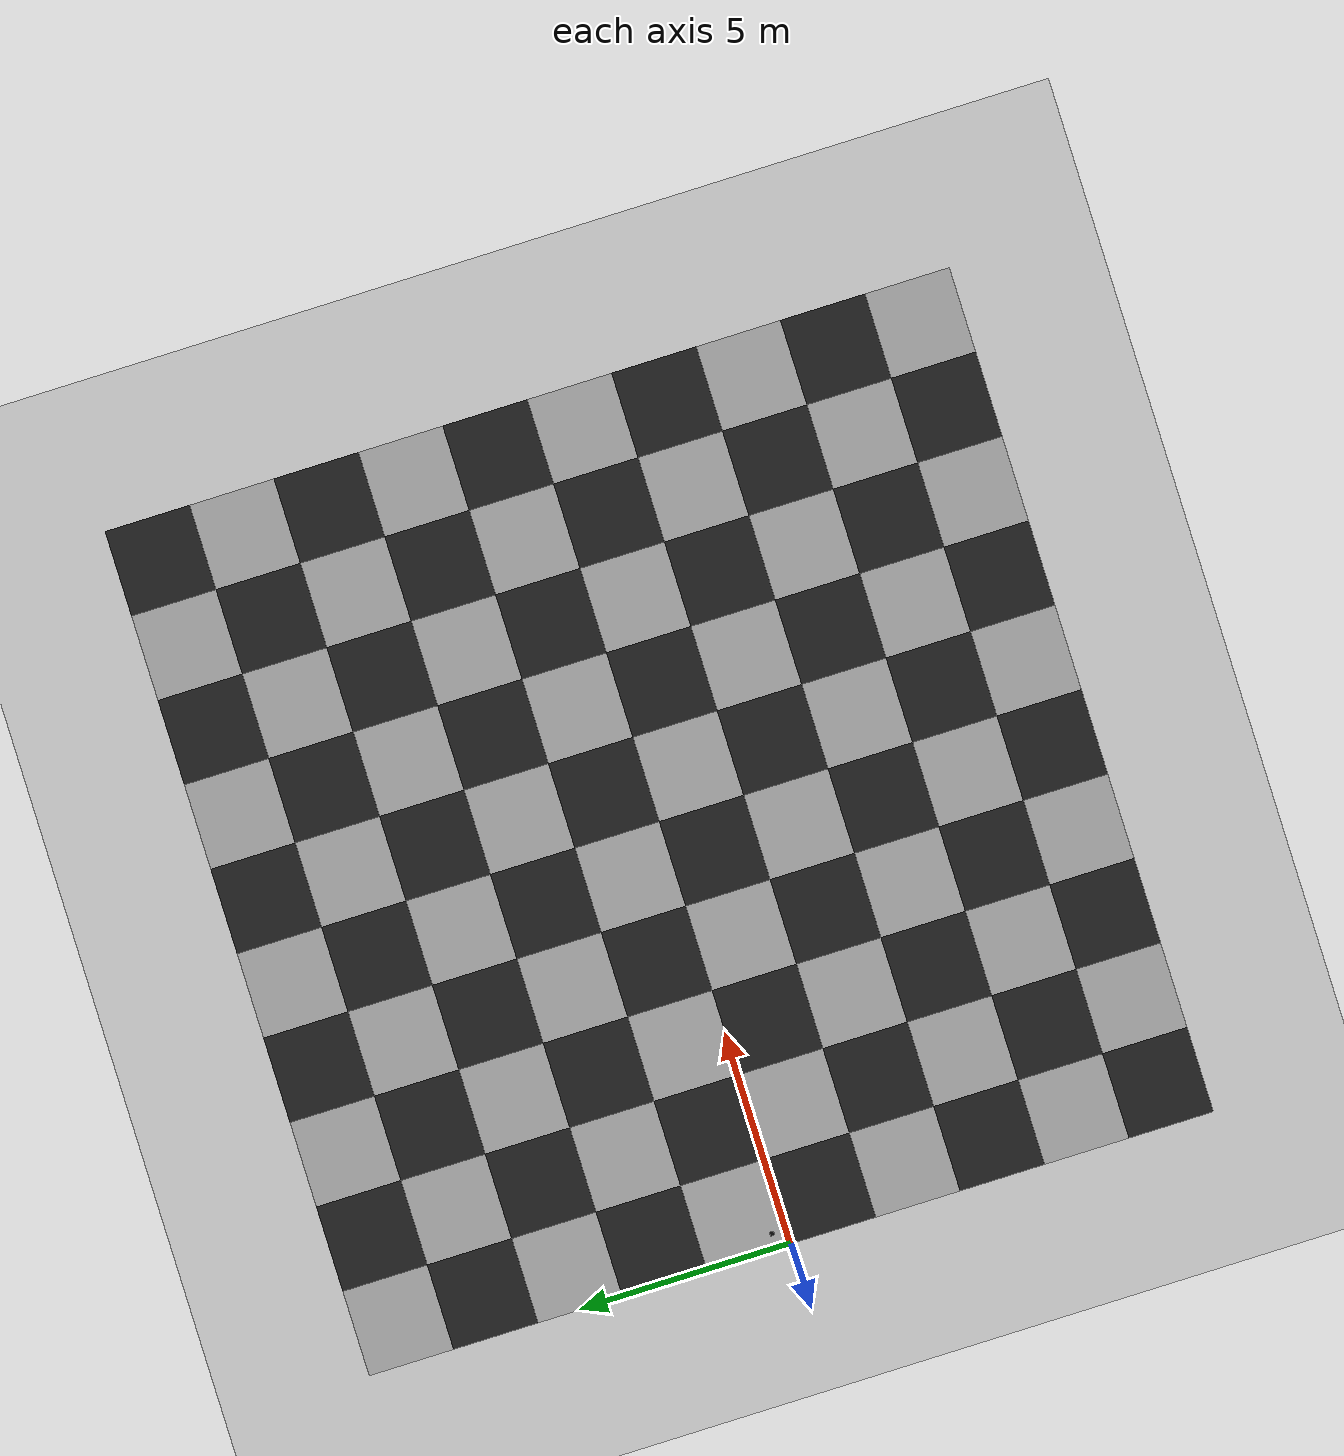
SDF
<sdf version="1.9">
 <world name="v7_railway_tunnel">
  <model name="ground_plane">
   <static>true</static>
   <link name="link">
    <collision name="collision">
     <geometry><plane><normal>0 0 1</normal><size>1 1</size></plane></geometry>
    </collision>
    <visual name="visual">
     <geometry><plane><normal>0 0 1</normal><size>500 500</size></plane></geometry>
     <material>
      <ambient>0.8 0.8 0.8 1</ambient>
      <diffuse>0.8 0.8 0.8 1</diffuse>
      <specular>0.1 0.1 0.1 1</specular>
     </material>
    </visual>
   </link>
  </model>
  <model name="optical_flow_floor">
   <static>true</static>
   <link name="tile_10_0">
    <pose>1 -9 0.006 0 0 0</pose>
    <visual name="visual">
     <geometry><box><size>2 2 0.01</size></box></geometry>
     <material>
      <ambient>0.12 0.12 0.12 1</ambient>
      <diffuse>0.12 0.12 0.12 1</diffuse>
      <specular>0.1 0.1 0.1 1</specular>
     </material>
    </visual>
   </link>
   <link name="tile_10_1">
    <pose>1 -7 0.006 0 0 0</pose>
    <visual name="visual">
     <geometry><box><size>2 2 0.01</size></box></geometry>
     <material>
      <ambient>0.65 0.65 0.65 1</ambient>
      <diffuse>0.65 0.65 0.65 1</diffuse>
      <specular>0.1 0.1 0.1 1</specular>
     </material>
    </visual>
   </link>
   <link name="tile_10_2">
    <pose>1 -5 0.006 0 0 0</pose>
    <visual name="visual">
     <geometry><box><size>2 2 0.01</size></box></geometry>
     <material>
      <ambient>0.12 0.12 0.12 1</ambient>
      <diffuse>0.12 0.12 0.12 1</diffuse>
      <specular>0.1 0.1 0.1 1</specular>
     </material>
    </visual>
   </link>
   <link name="tile_10_3">
    <pose>1 -3 0.006 0 0 0</pose>
    <visual name="visual">
     <geometry><box><size>2 2 0.01</size></box></geometry>
     <material>
      <ambient>0.65 0.65 0.65 1</ambient>
      <diffuse>0.65 0.65 0.65 1</diffuse>
      <specular>0.1 0.1 0.1 1</specular>
     </material>
    </visual>
   </link>
   <link name="tile_10_4">
    <pose>1 -1 0.006 0 0 0</pose>
    <visual name="visual">
     <geometry><box><size>2 2 0.01</size></box></geometry>
     <material>
      <ambient>0.12 0.12 0.12 1</ambient>
      <diffuse>0.12 0.12 0.12 1</diffuse>
      <specular>0.1 0.1 0.1 1</specular>
     </material>
    </visual>
   </link>
   <link name="tile_10_5">
    <pose>1 1 0.006 0 0 0</pose>
    <visual name="visual">
     <geometry><box><size>2 2 0.01</size></box></geometry>
     <material>
      <ambient>0.65 0.65 0.65 1</ambient>
      <diffuse>0.65 0.65 0.65 1</diffuse>
      <specular>0.1 0.1 0.1 1</specular>
     </material>
    </visual>
   </link>
   <link name="tile_10_6">
    <pose>1 3 0.006 0 0 0</pose>
    <visual name="visual">
     <geometry><box><size>2 2 0.01</size></box></geometry>
     <material>
      <ambient>0.12 0.12 0.12 1</ambient>
      <diffuse>0.12 0.12 0.12 1</diffuse>
      <specular>0.1 0.1 0.1 1</specular>
     </material>
    </visual>
   </link>
   <link name="tile_10_7">
    <pose>1 5 0.006 0 0 0</pose>
    <visual name="visual">
     <geometry><box><size>2 2 0.01</size></box></geometry>
     <material>
      <ambient>0.65 0.65 0.65 1</ambient>
      <diffuse>0.65 0.65 0.65 1</diffuse>
      <specular>0.1 0.1 0.1 1</specular>
     </material>
    </visual>
   </link>
   <link name="tile_10_8">
    <pose>1 7 0.006 0 0 0</pose>
    <visual name="visual">
     <geometry><box><size>2 2 0.01</size></box></geometry>
     <material>
      <ambient>0.12 0.12 0.12 1</ambient>
      <diffuse>0.12 0.12 0.12 1</diffuse>
      <specular>0.1 0.1 0.1 1</specular>
     </material>
    </visual>
   </link>
   <link name="tile_10_9">
    <pose>1 9 0.006 0 0 0</pose>
    <visual name="visual">
     <geometry><box><size>2 2 0.01</size></box></geometry>
     <material>
      <ambient>0.65 0.65 0.65 1</ambient>
      <diffuse>0.65 0.65 0.65 1</diffuse>
      <specular>0.1 0.1 0.1 1</specular>
     </material>
    </visual>
   </link>
   <link name="tile_11_0">
    <pose>3 -9 0.006 0 0 0</pose>
    <visual name="visual">
     <geometry><box><size>2 2 0.01</size></box></geometry>
     <material>
      <ambient>0.65 0.65 0.65 1</ambient>
      <diffuse>0.65 0.65 0.65 1</diffuse>
      <specular>0.1 0.1 0.1 1</specular>
     </material>
    </visual>
   </link>
   <link name="tile_11_1">
    <pose>3 -7 0.006 0 0 0</pose>
    <visual name="visual">
     <geometry><box><size>2 2 0.01</size></box></geometry>
     <material>
      <ambient>0.12 0.12 0.12 1</ambient>
      <diffuse>0.12 0.12 0.12 1</diffuse>
      <specular>0.1 0.1 0.1 1</specular>
     </material>
    </visual>
   </link>
   <link name="tile_11_2">
    <pose>3 -5 0.006 0 0 0</pose>
    <visual name="visual">
     <geometry><box><size>2 2 0.01</size></box></geometry>
     <material>
      <ambient>0.65 0.65 0.65 1</ambient>
      <diffuse>0.65 0.65 0.65 1</diffuse>
      <specular>0.1 0.1 0.1 1</specular>
     </material>
    </visual>
   </link>
   <link name="tile_11_3">
    <pose>3 -3 0.006 0 0 0</pose>
    <visual name="visual">
     <geometry><box><size>2 2 0.01</size></box></geometry>
     <material>
      <ambient>0.12 0.12 0.12 1</ambient>
      <diffuse>0.12 0.12 0.12 1</diffuse>
      <specular>0.1 0.1 0.1 1</specular>
     </material>
    </visual>
   </link>
   <link name="tile_11_4">
    <pose>3 -1 0.006 0 0 0</pose>
    <visual name="visual">
     <geometry><box><size>2 2 0.01</size></box></geometry>
     <material>
      <ambient>0.65 0.65 0.65 1</ambient>
      <diffuse>0.65 0.65 0.65 1</diffuse>
      <specular>0.1 0.1 0.1 1</specular>
     </material>
    </visual>
   </link>
   <link name="tile_11_5">
    <pose>3 1 0.006 0 0 0</pose>
    <visual name="visual">
     <geometry><box><size>2 2 0.01</size></box></geometry>
     <material>
      <ambient>0.12 0.12 0.12 1</ambient>
      <diffuse>0.12 0.12 0.12 1</diffuse>
      <specular>0.1 0.1 0.1 1</specular>
     </material>
    </visual>
   </link>
   <link name="tile_11_6">
    <pose>3 3 0.006 0 0 0</pose>
    <visual name="visual">
     <geometry><box><size>2 2 0.01</size></box></geometry>
     <material>
      <ambient>0.65 0.65 0.65 1</ambient>
      <diffuse>0.65 0.65 0.65 1</diffuse>
      <specular>0.1 0.1 0.1 1</specular>
     </material>
    </visual>
   </link>
   <link name="tile_11_7">
    <pose>3 5 0.006 0 0 0</pose>
    <visual name="visual">
     <geometry><box><size>2 2 0.01</size></box></geometry>
     <material>
      <ambient>0.12 0.12 0.12 1</ambient>
      <diffuse>0.12 0.12 0.12 1</diffuse>
      <specular>0.1 0.1 0.1 1</specular>
     </material>
    </visual>
   </link>
   <link name="tile_11_8">
    <pose>3 7 0.006 0 0 0</pose>
    <visual name="visual">
     <geometry><box><size>2 2 0.01</size></box></geometry>
     <material>
      <ambient>0.65 0.65 0.65 1</ambient>
      <diffuse>0.65 0.65 0.65 1</diffuse>
      <specular>0.1 0.1 0.1 1</specular>
     </material>
    </visual>
   </link>
   <link name="tile_11_9">
    <pose>3 9 0.006 0 0 0</pose>
    <visual name="visual">
     <geometry><box><size>2 2 0.01</size></box></geometry>
     <material>
      <ambient>0.12 0.12 0.12 1</ambient>
      <diffuse>0.12 0.12 0.12 1</diffuse>
      <specular>0.1 0.1 0.1 1</specular>
     </material>
    </visual>
   </link>
   <link name="tile_12_0">
    <pose>5 -9 0.006 0 0 0</pose>
    <visual name="visual">
     <geometry><box><size>2 2 0.01</size></box></geometry>
     <material>
      <ambient>0.12 0.12 0.12 1</ambient>
      <diffuse>0.12 0.12 0.12 1</diffuse>
      <specular>0.1 0.1 0.1 1</specular>
     </material>
    </visual>
   </link>
   <link name="tile_12_1">
    <pose>5 -7 0.006 0 0 0</pose>
    <visual name="visual">
     <geometry><box><size>2 2 0.01</size></box></geometry>
     <material>
      <ambient>0.65 0.65 0.65 1</ambient>
      <diffuse>0.65 0.65 0.65 1</diffuse>
      <specular>0.1 0.1 0.1 1</specular>
     </material>
    </visual>
   </link>
   <link name="tile_12_2">
    <pose>5 -5 0.006 0 0 0</pose>
    <visual name="visual">
     <geometry><box><size>2 2 0.01</size></box></geometry>
     <material>
      <ambient>0.12 0.12 0.12 1</ambient>
      <diffuse>0.12 0.12 0.12 1</diffuse>
      <specular>0.1 0.1 0.1 1</specular>
     </material>
    </visual>
   </link>
   <link name="tile_12_3">
    <pose>5 -3 0.006 0 0 0</pose>
    <visual name="visual">
     <geometry><box><size>2 2 0.01</size></box></geometry>
     <material>
      <ambient>0.65 0.65 0.65 1</ambient>
      <diffuse>0.65 0.65 0.65 1</diffuse>
      <specular>0.1 0.1 0.1 1</specular>
     </material>
    </visual>
   </link>
   <link name="tile_12_4">
    <pose>5 -1 0.006 0 0 0</pose>
    <visual name="visual">
     <geometry><box><size>2 2 0.01</size></box></geometry>
     <material>
      <ambient>0.12 0.12 0.12 1</ambient>
      <diffuse>0.12 0.12 0.12 1</diffuse>
      <specular>0.1 0.1 0.1 1</specular>
     </material>
    </visual>
   </link>
   <link name="tile_12_5">
    <pose>5 1 0.006 0 0 0</pose>
    <visual name="visual">
     <geometry><box><size>2 2 0.01</size></box></geometry>
     <material>
      <ambient>0.65 0.65 0.65 1</ambient>
      <diffuse>0.65 0.65 0.65 1</diffuse>
      <specular>0.1 0.1 0.1 1</specular>
     </material>
    </visual>
   </link>
   <link name="tile_12_6">
    <pose>5 3 0.006 0 0 0</pose>
    <visual name="visual">
     <geometry><box><size>2 2 0.01</size></box></geometry>
     <material>
      <ambient>0.12 0.12 0.12 1</ambient>
      <diffuse>0.12 0.12 0.12 1</diffuse>
      <specular>0.1 0.1 0.1 1</specular>
     </material>
    </visual>
   </link>
   <link name="tile_12_7">
    <pose>5 5 0.006 0 0 0</pose>
    <visual name="visual">
     <geometry><box><size>2 2 0.01</size></box></geometry>
     <material>
      <ambient>0.65 0.65 0.65 1</ambient>
      <diffuse>0.65 0.65 0.65 1</diffuse>
      <specular>0.1 0.1 0.1 1</specular>
     </material>
    </visual>
   </link>
   <link name="tile_12_8">
    <pose>5 7 0.006 0 0 0</pose>
    <visual name="visual">
     <geometry><box><size>2 2 0.01</size></box></geometry>
     <material>
      <ambient>0.12 0.12 0.12 1</ambient>
      <diffuse>0.12 0.12 0.12 1</diffuse>
      <specular>0.1 0.1 0.1 1</specular>
     </material>
    </visual>
   </link>
   <link name="tile_12_9">
    <pose>5 9 0.006 0 0 0</pose>
    <visual name="visual">
     <geometry><box><size>2 2 0.01</size></box></geometry>
     <material>
      <ambient>0.65 0.65 0.65 1</ambient>
      <diffuse>0.65 0.65 0.65 1</diffuse>
      <specular>0.1 0.1 0.1 1</specular>
     </material>
    </visual>
   </link>
   <link name="tile_13_0">
    <pose>7 -9 0.006 0 0 0</pose>
    <visual name="visual">
     <geometry><box><size>2 2 0.01</size></box></geometry>
     <material>
      <ambient>0.65 0.65 0.65 1</ambient>
      <diffuse>0.65 0.65 0.65 1</diffuse>
      <specular>0.1 0.1 0.1 1</specular>
     </material>
    </visual>
   </link>
   <link name="tile_13_1">
    <pose>7 -7 0.006 0 0 0</pose>
    <visual name="visual">
     <geometry><box><size>2 2 0.01</size></box></geometry>
     <material>
      <ambient>0.12 0.12 0.12 1</ambient>
      <diffuse>0.12 0.12 0.12 1</diffuse>
      <specular>0.1 0.1 0.1 1</specular>
     </material>
    </visual>
   </link>
   <link name="tile_13_2">
    <pose>7 -5 0.006 0 0 0</pose>
    <visual name="visual">
     <geometry><box><size>2 2 0.01</size></box></geometry>
     <material>
      <ambient>0.65 0.65 0.65 1</ambient>
      <diffuse>0.65 0.65 0.65 1</diffuse>
      <specular>0.1 0.1 0.1 1</specular>
     </material>
    </visual>
   </link>
   <link name="tile_13_3">
    <pose>7 -3 0.006 0 0 0</pose>
    <visual name="visual">
     <geometry><box><size>2 2 0.01</size></box></geometry>
     <material>
      <ambient>0.12 0.12 0.12 1</ambient>
      <diffuse>0.12 0.12 0.12 1</diffuse>
      <specular>0.1 0.1 0.1 1</specular>
     </material>
    </visual>
   </link>
   <link name="tile_13_4">
    <pose>7 -1 0.006 0 0 0</pose>
    <visual name="visual">
     <geometry><box><size>2 2 0.01</size></box></geometry>
     <material>
      <ambient>0.65 0.65 0.65 1</ambient>
      <diffuse>0.65 0.65 0.65 1</diffuse>
      <specular>0.1 0.1 0.1 1</specular>
     </material>
    </visual>
   </link>
   <link name="tile_13_5">
    <pose>7 1 0.006 0 0 0</pose>
    <visual name="visual">
     <geometry><box><size>2 2 0.01</size></box></geometry>
     <material>
      <ambient>0.12 0.12 0.12 1</ambient>
      <diffuse>0.12 0.12 0.12 1</diffuse>
      <specular>0.1 0.1 0.1 1</specular>
     </material>
    </visual>
   </link>
   <link name="tile_13_6">
    <pose>7 3 0.006 0 0 0</pose>
    <visual name="visual">
     <geometry><box><size>2 2 0.01</size></box></geometry>
     <material>
      <ambient>0.65 0.65 0.65 1</ambient>
      <diffuse>0.65 0.65 0.65 1</diffuse>
      <specular>0.1 0.1 0.1 1</specular>
     </material>
    </visual>
   </link>
   <link name="tile_13_7">
    <pose>7 5 0.006 0 0 0</pose>
    <visual name="visual">
     <geometry><box><size>2 2 0.01</size></box></geometry>
     <material>
      <ambient>0.12 0.12 0.12 1</ambient>
      <diffuse>0.12 0.12 0.12 1</diffuse>
      <specular>0.1 0.1 0.1 1</specular>
     </material>
    </visual>
   </link>
   <link name="tile_13_8">
    <pose>7 7 0.006 0 0 0</pose>
    <visual name="visual">
     <geometry><box><size>2 2 0.01</size></box></geometry>
     <material>
      <ambient>0.65 0.65 0.65 1</ambient>
      <diffuse>0.65 0.65 0.65 1</diffuse>
      <specular>0.1 0.1 0.1 1</specular>
     </material>
    </visual>
   </link>
   <link name="tile_13_9">
    <pose>7 9 0.006 0 0 0</pose>
    <visual name="visual">
     <geometry><box><size>2 2 0.01</size></box></geometry>
     <material>
      <ambient>0.12 0.12 0.12 1</ambient>
      <diffuse>0.12 0.12 0.12 1</diffuse>
      <specular>0.1 0.1 0.1 1</specular>
     </material>
    </visual>
   </link>
   <link name="tile_14_0">
    <pose>9 -9 0.006 0 0 0</pose>
    <visual name="visual">
     <geometry><box><size>2 2 0.01</size></box></geometry>
     <material>
      <ambient>0.12 0.12 0.12 1</ambient>
      <diffuse>0.12 0.12 0.12 1</diffuse>
      <specular>0.1 0.1 0.1 1</specular>
     </material>
    </visual>
   </link>
   <link name="tile_14_1">
    <pose>9 -7 0.006 0 0 0</pose>
    <visual name="visual">
     <geometry><box><size>2 2 0.01</size></box></geometry>
     <material>
      <ambient>0.65 0.65 0.65 1</ambient>
      <diffuse>0.65 0.65 0.65 1</diffuse>
      <specular>0.1 0.1 0.1 1</specular>
     </material>
    </visual>
   </link>
   <link name="tile_14_2">
    <pose>9 -5 0.006 0 0 0</pose>
    <visual name="visual">
     <geometry><box><size>2 2 0.01</size></box></geometry>
     <material>
      <ambient>0.12 0.12 0.12 1</ambient>
      <diffuse>0.12 0.12 0.12 1</diffuse>
      <specular>0.1 0.1 0.1 1</specular>
     </material>
    </visual>
   </link>
   <link name="tile_14_3">
    <pose>9 -3 0.006 0 0 0</pose>
    <visual name="visual">
     <geometry><box><size>2 2 0.01</size></box></geometry>
     <material>
      <ambient>0.65 0.65 0.65 1</ambient>
      <diffuse>0.65 0.65 0.65 1</diffuse>
      <specular>0.1 0.1 0.1 1</specular>
     </material>
    </visual>
   </link>
   <link name="tile_14_4">
    <pose>9 -1 0.006 0 0 0</pose>
    <visual name="visual">
     <geometry><box><size>2 2 0.01</size></box></geometry>
     <material>
      <ambient>0.12 0.12 0.12 1</ambient>
      <diffuse>0.12 0.12 0.12 1</diffuse>
      <specular>0.1 0.1 0.1 1</specular>
     </material>
    </visual>
   </link>
   <link name="tile_14_5">
    <pose>9 1 0.006 0 0 0</pose>
    <visual name="visual">
     <geometry><box><size>2 2 0.01</size></box></geometry>
     <material>
      <ambient>0.65 0.65 0.65 1</ambient>
      <diffuse>0.65 0.65 0.65 1</diffuse>
      <specular>0.1 0.1 0.1 1</specular>
     </material>
    </visual>
   </link>
   <link name="tile_14_6">
    <pose>9 3 0.006 0 0 0</pose>
    <visual name="visual">
     <geometry><box><size>2 2 0.01</size></box></geometry>
     <material>
      <ambient>0.12 0.12 0.12 1</ambient>
      <diffuse>0.12 0.12 0.12 1</diffuse>
      <specular>0.1 0.1 0.1 1</specular>
     </material>
    </visual>
   </link>
   <link name="tile_14_7">
    <pose>9 5 0.006 0 0 0</pose>
    <visual name="visual">
     <geometry><box><size>2 2 0.01</size></box></geometry>
     <material>
      <ambient>0.65 0.65 0.65 1</ambient>
      <diffuse>0.65 0.65 0.65 1</diffuse>
      <specular>0.1 0.1 0.1 1</specular>
     </material>
    </visual>
   </link>
   <link name="tile_14_8">
    <pose>9 7 0.006 0 0 0</pose>
    <visual name="visual">
     <geometry><box><size>2 2 0.01</size></box></geometry>
     <material>
      <ambient>0.12 0.12 0.12 1</ambient>
      <diffuse>0.12 0.12 0.12 1</diffuse>
      <specular>0.1 0.1 0.1 1</specular>
     </material>
    </visual>
   </link>
   <link name="tile_14_9">
    <pose>9 9 0.006 0 0 0</pose>
    <visual name="visual">
     <geometry><box><size>2 2 0.01</size></box></geometry>
     <material>
      <ambient>0.65 0.65 0.65 1</ambient>
      <diffuse>0.65 0.65 0.65 1</diffuse>
      <specular>0.1 0.1 0.1 1</specular>
     </material>
    </visual>
   </link>
   <link name="tile_15_0">
    <pose>11 -9 0.006 0 0 0</pose>
    <visual name="visual">
     <geometry><box><size>2 2 0.01</size></box></geometry>
     <material>
      <ambient>0.65 0.65 0.65 1</ambient>
      <diffuse>0.65 0.65 0.65 1</diffuse>
      <specular>0.1 0.1 0.1 1</specular>
     </material>
    </visual>
   </link>
   <link name="tile_15_1">
    <pose>11 -7 0.006 0 0 0</pose>
    <visual name="visual">
     <geometry><box><size>2 2 0.01</size></box></geometry>
     <material>
      <ambient>0.12 0.12 0.12 1</ambient>
      <diffuse>0.12 0.12 0.12 1</diffuse>
      <specular>0.1 0.1 0.1 1</specular>
     </material>
    </visual>
   </link>
   <link name="tile_15_2">
    <pose>11 -5 0.006 0 0 0</pose>
    <visual name="visual">
     <geometry><box><size>2 2 0.01</size></box></geometry>
     <material>
      <ambient>0.65 0.65 0.65 1</ambient>
      <diffuse>0.65 0.65 0.65 1</diffuse>
      <specular>0.1 0.1 0.1 1</specular>
     </material>
    </visual>
   </link>
   <link name="tile_15_3">
    <pose>11 -3 0.006 0 0 0</pose>
    <visual name="visual">
     <geometry><box><size>2 2 0.01</size></box></geometry>
     <material>
      <ambient>0.12 0.12 0.12 1</ambient>
      <diffuse>0.12 0.12 0.12 1</diffuse>
      <specular>0.1 0.1 0.1 1</specular>
     </material>
    </visual>
   </link>
   <link name="tile_15_4">
    <pose>11 -1 0.006 0 0 0</pose>
    <visual name="visual">
     <geometry><box><size>2 2 0.01</size></box></geometry>
     <material>
      <ambient>0.65 0.65 0.65 1</ambient>
      <diffuse>0.65 0.65 0.65 1</diffuse>
      <specular>0.1 0.1 0.1 1</specular>
     </material>
    </visual>
   </link>
   <link name="tile_15_5">
    <pose>11 1 0.006 0 0 0</pose>
    <visual name="visual">
     <geometry><box><size>2 2 0.01</size></box></geometry>
     <material>
      <ambient>0.12 0.12 0.12 1</ambient>
      <diffuse>0.12 0.12 0.12 1</diffuse>
      <specular>0.1 0.1 0.1 1</specular>
     </material>
    </visual>
   </link>
   <link name="tile_15_6">
    <pose>11 3 0.006 0 0 0</pose>
    <visual name="visual">
     <geometry><box><size>2 2 0.01</size></box></geometry>
     <material>
      <ambient>0.65 0.65 0.65 1</ambient>
      <diffuse>0.65 0.65 0.65 1</diffuse>
      <specular>0.1 0.1 0.1 1</specular>
     </material>
    </visual>
   </link>
   <link name="tile_15_7">
    <pose>11 5 0.006 0 0 0</pose>
    <visual name="visual">
     <geometry><box><size>2 2 0.01</size></box></geometry>
     <material>
      <ambient>0.12 0.12 0.12 1</ambient>
      <diffuse>0.12 0.12 0.12 1</diffuse>
      <specular>0.1 0.1 0.1 1</specular>
     </material>
    </visual>
   </link>
   <link name="tile_15_8">
    <pose>11 7 0.006 0 0 0</pose>
    <visual name="visual">
     <geometry><box><size>2 2 0.01</size></box></geometry>
     <material>
      <ambient>0.65 0.65 0.65 1</ambient>
      <diffuse>0.65 0.65 0.65 1</diffuse>
      <specular>0.1 0.1 0.1 1</specular>
     </material>
    </visual>
   </link>
   <link name="tile_15_9">
    <pose>11 9 0.006 0 0 0</pose>
    <visual name="visual">
     <geometry><box><size>2 2 0.01</size></box></geometry>
     <material>
      <ambient>0.12 0.12 0.12 1</ambient>
      <diffuse>0.12 0.12 0.12 1</diffuse>
      <specular>0.1 0.1 0.1 1</specular>
     </material>
    </visual>
   </link>
   <link name="tile_16_0">
    <pose>13 -9 0.006 0 0 0</pose>
    <visual name="visual">
     <geometry><box><size>2 2 0.01</size></box></geometry>
     <material>
      <ambient>0.12 0.12 0.12 1</ambient>
      <diffuse>0.12 0.12 0.12 1</diffuse>
      <specular>0.1 0.1 0.1 1</specular>
     </material>
    </visual>
   </link>
   <link name="tile_16_1">
    <pose>13 -7 0.006 0 0 0</pose>
    <visual name="visual">
     <geometry><box><size>2 2 0.01</size></box></geometry>
     <material>
      <ambient>0.65 0.65 0.65 1</ambient>
      <diffuse>0.65 0.65 0.65 1</diffuse>
      <specular>0.1 0.1 0.1 1</specular>
     </material>
    </visual>
   </link>
   <link name="tile_16_2">
    <pose>13 -5 0.006 0 0 0</pose>
    <visual name="visual">
     <geometry><box><size>2 2 0.01</size></box></geometry>
     <material>
      <ambient>0.12 0.12 0.12 1</ambient>
      <diffuse>0.12 0.12 0.12 1</diffuse>
      <specular>0.1 0.1 0.1 1</specular>
     </material>
    </visual>
   </link>
   <link name="tile_16_3">
    <pose>13 -3 0.006 0 0 0</pose>
    <visual name="visual">
     <geometry><box><size>2 2 0.01</size></box></geometry>
     <material>
      <ambient>0.65 0.65 0.65 1</ambient>
      <diffuse>0.65 0.65 0.65 1</diffuse>
      <specular>0.1 0.1 0.1 1</specular>
     </material>
    </visual>
   </link>
   <link name="tile_16_4">
    <pose>13 -1 0.006 0 0 0</pose>
    <visual name="visual">
     <geometry><box><size>2 2 0.01</size></box></geometry>
     <material>
      <ambient>0.12 0.12 0.12 1</ambient>
      <diffuse>0.12 0.12 0.12 1</diffuse>
      <specular>0.1 0.1 0.1 1</specular>
     </material>
    </visual>
   </link>
   <link name="tile_16_5">
    <pose>13 1 0.006 0 0 0</pose>
    <visual name="visual">
     <geometry><box><size>2 2 0.01</size></box></geometry>
     <material>
      <ambient>0.65 0.65 0.65 1</ambient>
      <diffuse>0.65 0.65 0.65 1</diffuse>
      <specular>0.1 0.1 0.1 1</specular>
     </material>
    </visual>
   </link>
   <link name="tile_16_6">
    <pose>13 3 0.006 0 0 0</pose>
    <visual name="visual">
     <geometry><box><size>2 2 0.01</size></box></geometry>
     <material>
      <ambient>0.12 0.12 0.12 1</ambient>
      <diffuse>0.12 0.12 0.12 1</diffuse>
      <specular>0.1 0.1 0.1 1</specular>
     </material>
    </visual>
   </link>
   <link name="tile_16_7">
    <pose>13 5 0.006 0 0 0</pose>
    <visual name="visual">
     <geometry><box><size>2 2 0.01</size></box></geometry>
     <material>
      <ambient>0.65 0.65 0.65 1</ambient>
      <diffuse>0.65 0.65 0.65 1</diffuse>
      <specular>0.1 0.1 0.1 1</specular>
     </material>
    </visual>
   </link>
   <link name="tile_16_8">
    <pose>13 7 0.006 0 0 0</pose>
    <visual name="visual">
     <geometry><box><size>2 2 0.01</size></box></geometry>
     <material>
      <ambient>0.12 0.12 0.12 1</ambient>
      <diffuse>0.12 0.12 0.12 1</diffuse>
      <specular>0.1 0.1 0.1 1</specular>
     </material>
    </visual>
   </link>
   <link name="tile_16_9">
    <pose>13 9 0.006 0 0 0</pose>
    <visual name="visual">
     <geometry><box><size>2 2 0.01</size></box></geometry>
     <material>
      <ambient>0.65 0.65 0.65 1</ambient>
      <diffuse>0.65 0.65 0.65 1</diffuse>
      <specular>0.1 0.1 0.1 1</specular>
     </material>
    </visual>
   </link>
   <link name="tile_17_0">
    <pose>15 -9 0.006 0 0 0</pose>
    <visual name="visual">
     <geometry><box><size>2 2 0.01</size></box></geometry>
     <material>
      <ambient>0.65 0.65 0.65 1</ambient>
      <diffuse>0.65 0.65 0.65 1</diffuse>
      <specular>0.1 0.1 0.1 1</specular>
     </material>
    </visual>
   </link>
   <link name="tile_17_1">
    <pose>15 -7 0.006 0 0 0</pose>
    <visual name="visual">
     <geometry><box><size>2 2 0.01</size></box></geometry>
     <material>
      <ambient>0.12 0.12 0.12 1</ambient>
      <diffuse>0.12 0.12 0.12 1</diffuse>
      <specular>0.1 0.1 0.1 1</specular>
     </material>
    </visual>
   </link>
   <link name="tile_17_2">
    <pose>15 -5 0.006 0 0 0</pose>
    <visual name="visual">
     <geometry><box><size>2 2 0.01</size></box></geometry>
     <material>
      <ambient>0.65 0.65 0.65 1</ambient>
      <diffuse>0.65 0.65 0.65 1</diffuse>
      <specular>0.1 0.1 0.1 1</specular>
     </material>
    </visual>
   </link>
   <link name="tile_17_3">
    <pose>15 -3 0.006 0 0 0</pose>
    <visual name="visual">
     <geometry><box><size>2 2 0.01</size></box></geometry>
     <material>
      <ambient>0.12 0.12 0.12 1</ambient>
      <diffuse>0.12 0.12 0.12 1</diffuse>
      <specular>0.1 0.1 0.1 1</specular>
     </material>
    </visual>
   </link>
   <link name="tile_17_4">
    <pose>15 -1 0.006 0 0 0</pose>
    <visual name="visual">
     <geometry><box><size>2 2 0.01</size></box></geometry>
     <material>
      <ambient>0.65 0.65 0.65 1</ambient>
      <diffuse>0.65 0.65 0.65 1</diffuse>
      <specular>0.1 0.1 0.1 1</specular>
     </material>
    </visual>
   </link>
   <link name="tile_17_5">
    <pose>15 1 0.006 0 0 0</pose>
    <visual name="visual">
     <geometry><box><size>2 2 0.01</size></box></geometry>
     <material>
      <ambient>0.12 0.12 0.12 1</ambient>
      <diffuse>0.12 0.12 0.12 1</diffuse>
      <specular>0.1 0.1 0.1 1</specular>
     </material>
    </visual>
   </link>
   <link name="tile_17_6">
    <pose>15 3 0.006 0 0 0</pose>
    <visual name="visual">
     <geometry><box><size>2 2 0.01</size></box></geometry>
     <material>
      <ambient>0.65 0.65 0.65 1</ambient>
      <diffuse>0.65 0.65 0.65 1</diffuse>
      <specular>0.1 0.1 0.1 1</specular>
     </material>
    </visual>
   </link>
   <link name="tile_17_7">
    <pose>15 5 0.006 0 0 0</pose>
    <visual name="visual">
     <geometry><box><size>2 2 0.01</size></box></geometry>
     <material>
      <ambient>0.12 0.12 0.12 1</ambient>
      <diffuse>0.12 0.12 0.12 1</diffuse>
      <specular>0.1 0.1 0.1 1</specular>
     </material>
    </visual>
   </link>
   <link name="tile_17_8">
    <pose>15 7 0.006 0 0 0</pose>
    <visual name="visual">
     <geometry><box><size>2 2 0.01</size></box></geometry>
     <material>
      <ambient>0.65 0.65 0.65 1</ambient>
      <diffuse>0.65 0.65 0.65 1</diffuse>
      <specular>0.1 0.1 0.1 1</specular>
     </material>
    </visual>
   </link>
   <link name="tile_17_9">
    <pose>15 9 0.006 0 0 0</pose>
    <visual name="visual">
     <geometry><box><size>2 2 0.01</size></box></geometry>
     <material>
      <ambient>0.12 0.12 0.12 1</ambient>
      <diffuse>0.12 0.12 0.12 1</diffuse>
      <specular>0.1 0.1 0.1 1</specular>
     </material>
    </visual>
   </link>
   <link name="tile_18_0">
    <pose>17 -9 0.006 0 0 0</pose>
    <visual name="visual">
     <geometry><box><size>2 2 0.01</size></box></geometry>
     <material>
      <ambient>0.12 0.12 0.12 1</ambient>
      <diffuse>0.12 0.12 0.12 1</diffuse>
      <specular>0.1 0.1 0.1 1</specular>
     </material>
    </visual>
   </link>
   <link name="tile_18_1">
    <pose>17 -7 0.006 0 0 0</pose>
    <visual name="visual">
     <geometry><box><size>2 2 0.01</size></box></geometry>
     <material>
      <ambient>0.65 0.65 0.65 1</ambient>
      <diffuse>0.65 0.65 0.65 1</diffuse>
      <specular>0.1 0.1 0.1 1</specular>
     </material>
    </visual>
   </link>
   <link name="tile_18_2">
    <pose>17 -5 0.006 0 0 0</pose>
    <visual name="visual">
     <geometry><box><size>2 2 0.01</size></box></geometry>
     <material>
      <ambient>0.12 0.12 0.12 1</ambient>
      <diffuse>0.12 0.12 0.12 1</diffuse>
      <specular>0.1 0.1 0.1 1</specular>
     </material>
    </visual>
   </link>
   <link name="tile_18_3">
    <pose>17 -3 0.006 0 0 0</pose>
    <visual name="visual">
     <geometry><box><size>2 2 0.01</size></box></geometry>
     <material>
      <ambient>0.65 0.65 0.65 1</ambient>
      <diffuse>0.65 0.65 0.65 1</diffuse>
      <specular>0.1 0.1 0.1 1</specular>
     </material>
    </visual>
   </link>
   <link name="tile_18_4">
    <pose>17 -1 0.006 0 0 0</pose>
    <visual name="visual">
     <geometry><box><size>2 2 0.01</size></box></geometry>
     <material>
      <ambient>0.12 0.12 0.12 1</ambient>
      <diffuse>0.12 0.12 0.12 1</diffuse>
      <specular>0.1 0.1 0.1 1</specular>
     </material>
    </visual>
   </link>
   <link name="tile_18_5">
    <pose>17 1 0.006 0 0 0</pose>
    <visual name="visual">
     <geometry><box><size>2 2 0.01</size></box></geometry>
     <material>
      <ambient>0.65 0.65 0.65 1</ambient>
      <diffuse>0.65 0.65 0.65 1</diffuse>
      <specular>0.1 0.1 0.1 1</specular>
     </material>
    </visual>
   </link>
   <link name="tile_18_6">
    <pose>17 3 0.006 0 0 0</pose>
    <visual name="visual">
     <geometry><box><size>2 2 0.01</size></box></geometry>
     <material>
      <ambient>0.12 0.12 0.12 1</ambient>
      <diffuse>0.12 0.12 0.12 1</diffuse>
      <specular>0.1 0.1 0.1 1</specular>
     </material>
    </visual>
   </link>
   <link name="tile_18_7">
    <pose>17 5 0.006 0 0 0</pose>
    <visual name="visual">
     <geometry><box><size>2 2 0.01</size></box></geometry>
     <material>
      <ambient>0.65 0.65 0.65 1</ambient>
      <diffuse>0.65 0.65 0.65 1</diffuse>
      <specular>0.1 0.1 0.1 1</specular>
     </material>
    </visual>
   </link>
   <link name="tile_18_8">
    <pose>17 7 0.006 0 0 0</pose>
    <visual name="visual">
     <geometry><box><size>2 2 0.01</size></box></geometry>
     <material>
      <ambient>0.12 0.12 0.12 1</ambient>
      <diffuse>0.12 0.12 0.12 1</diffuse>
      <specular>0.1 0.1 0.1 1</specular>
     </material>
    </visual>
   </link>
   <link name="tile_18_9">
    <pose>17 9 0.006 0 0 0</pose>
    <visual name="visual">
     <geometry><box><size>2 2 0.01</size></box></geometry>
     <material>
      <ambient>0.65 0.65 0.65 1</ambient>
      <diffuse>0.65 0.65 0.65 1</diffuse>
      <specular>0.1 0.1 0.1 1</specular>
     </material>
    </visual>
   </link>
   <link name="tile_19_0">
    <pose>19 -9 0.006 0 0 0</pose>
    <visual name="visual">
     <geometry><box><size>2 2 0.01</size></box></geometry>
     <material>
      <ambient>0.65 0.65 0.65 1</ambient>
      <diffuse>0.65 0.65 0.65 1</diffuse>
      <specular>0.1 0.1 0.1 1</specular>
     </material>
    </visual>
   </link>
   <link name="tile_19_1">
    <pose>19 -7 0.006 0 0 0</pose>
    <visual name="visual">
     <geometry><box><size>2 2 0.01</size></box></geometry>
     <material>
      <ambient>0.12 0.12 0.12 1</ambient>
      <diffuse>0.12 0.12 0.12 1</diffuse>
      <specular>0.1 0.1 0.1 1</specular>
     </material>
    </visual>
   </link>
   <link name="tile_19_2">
    <pose>19 -5 0.006 0 0 0</pose>
    <visual name="visual">
     <geometry><box><size>2 2 0.01</size></box></geometry>
     <material>
      <ambient>0.65 0.65 0.65 1</ambient>
      <diffuse>0.65 0.65 0.65 1</diffuse>
      <specular>0.1 0.1 0.1 1</specular>
     </material>
    </visual>
   </link>
   <link name="tile_19_3">
    <pose>19 -3 0.006 0 0 0</pose>
    <visual name="visual">
     <geometry><box><size>2 2 0.01</size></box></geometry>
     <material>
      <ambient>0.12 0.12 0.12 1</ambient>
      <diffuse>0.12 0.12 0.12 1</diffuse>
      <specular>0.1 0.1 0.1 1</specular>
     </material>
    </visual>
   </link>
   <link name="tile_19_4">
    <pose>19 -1 0.006 0 0 0</pose>
    <visual name="visual">
     <geometry><box><size>2 2 0.01</size></box></geometry>
     <material>
      <ambient>0.65 0.65 0.65 1</ambient>
      <diffuse>0.65 0.65 0.65 1</diffuse>
      <specular>0.1 0.1 0.1 1</specular>
     </material>
    </visual>
   </link>
   <link name="tile_19_5">
    <pose>19 1 0.006 0 0 0</pose>
    <visual name="visual">
     <geometry><box><size>2 2 0.01</size></box></geometry>
     <material>
      <ambient>0.12 0.12 0.12 1</ambient>
      <diffuse>0.12 0.12 0.12 1</diffuse>
      <specular>0.1 0.1 0.1 1</specular>
     </material>
    </visual>
   </link>
   <link name="tile_19_6">
    <pose>19 3 0.006 0 0 0</pose>
    <visual name="visual">
     <geometry><box><size>2 2 0.01</size></box></geometry>
     <material>
      <ambient>0.65 0.65 0.65 1</ambient>
      <diffuse>0.65 0.65 0.65 1</diffuse>
      <specular>0.1 0.1 0.1 1</specular>
     </material>
    </visual>
   </link>
   <link name="tile_19_7">
    <pose>19 5 0.006 0 0 0</pose>
    <visual name="visual">
     <geometry><box><size>2 2 0.01</size></box></geometry>
     <material>
      <ambient>0.12 0.12 0.12 1</ambient>
      <diffuse>0.12 0.12 0.12 1</diffuse>
      <specular>0.1 0.1 0.1 1</specular>
     </material>
    </visual>
   </link>
   <link name="tile_19_8">
    <pose>19 7 0.006 0 0 0</pose>
    <visual name="visual">
     <geometry><box><size>2 2 0.01</size></box></geometry>
     <material>
      <ambient>0.65 0.65 0.65 1</ambient>
      <diffuse>0.65 0.65 0.65 1</diffuse>
      <specular>0.1 0.1 0.1 1</specular>
     </material>
    </visual>
   </link>
   <link name="tile_19_9">
    <pose>19 9 0.006 0 0 0</pose>
    <visual name="visual">
     <geometry><box><size>2 2 0.01</size></box></geometry>
     <material>
      <ambient>0.12 0.12 0.12 1</ambient>
      <diffuse>0.12 0.12 0.12 1</diffuse>
      <specular>0.1 0.1 0.1 1</specular>
     </material>
    </visual>
   </link>
   <link name="fine_tile_7_7">
    <pose>0.35 0.35 0.012 0 0 0</pose>
    <visual name="visual">
     <geometry><box><size>0.1 0.1 0.01</size></box></geometry>
     <material>
      <ambient>0.03 0.03 0.03 1</ambient>
      <diffuse>0.03 0.03 0.03 1</diffuse>
      <specular>0.1 0.1 0.1 1</specular>
     </material>
    </visual>
   </link>
  </model>
 </world>
</sdf>
